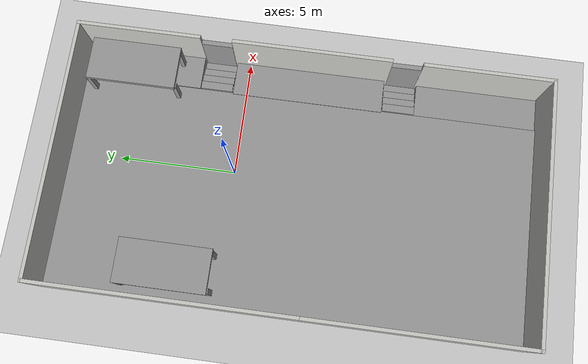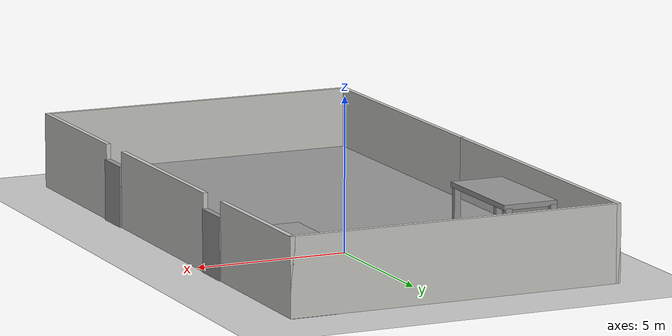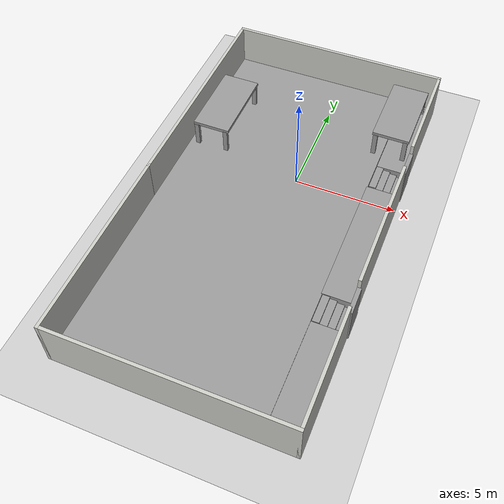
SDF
<sdf version="1.7">
 <world name="default">
  <light name="sun" type="directional">
   <pose>0 0 10 0 -0 0</pose>
   <diffuse>0.8 0.8 0.8 1</diffuse>
   <specular>0.2 0.2 0.2 1</specular>
   <attenuation>
    <range>1000</range>
    <constant>0.9</constant>
    <linear>0.01</linear>
    <quadratic>0.001</quadratic>
   </attenuation>
   <direction>-0.5 0.1 -0.9</direction>
   <spot><inner_angle>0</inner_angle><outer_angle>0</outer_angle><falloff>0</falloff></spot>
  </light>
  <model name="ground_plane">
   <static>1</static>
   <link name="link">
    <collision name="collision">
     <geometry><plane><normal>0 0 1</normal><size>100 100</size></plane></geometry>
     <surface>
      <contact><collide_bitmask>65535</collide_bitmask></contact>
      <friction><ode><mu>100</mu><mu2>50</mu2></ode></friction>
     </surface>
    </collision>
    <visual name="visual">
     <cast_shadows>0</cast_shadows>
     <geometry><plane><normal>0 0 1</normal><size>100 100</size></plane></geometry>
     <material>
      <script><uri>file://media/materials/scripts/gazebo.material</uri><name>Gazebo/Grey</name></script>
     </material>
    </visual>
   </link>
  </model>
  <gravity>0 0 -9.8</gravity>
  <magnetic_field>6e-06 2.3e-05 -4.2e-05</magnetic_field>
  <atmosphere type="adiabatic"/>
  <physics type="ode">
   <max_step_size>0.001</max_step_size>
   <real_time_factor>1</real_time_factor>
   <real_time_update_rate>1000</real_time_update_rate>
  </physics>
  <scene><ambient>0.4 0.4 0.4 1</ambient><background>0.7 0.7 0.7 1</background><shadows>1</shadows></scene>
  <spherical_coordinates>
   <surface_model>EARTH_WGS84</surface_model>
   <latitude_deg>0</latitude_deg>
   <longitude_deg>0</longitude_deg>
   <elevation>0</elevation>
   <heading_deg>0</heading_deg>
  </spherical_coordinates>
  <model name="uni_lab_with_floorjoint">
   <model name="uni_lab_with_floor">
    <link name="link_0">
     <inertial>
      <mass>76.9731</mass>
      <inertia><ixx>2549.54</ixx><ixy>0</ixy><ixz>0</ixz><iyy>549.418</iyy><iyz>0</iyz><izz>3096.72</izz></inertia>
     </inertial>
     <pose>-3.34953 -0.011442 0.067888 0 -0 0</pose>
     <visual name="visual">
      <geometry><box><size>9.2455 19.9323 0.41747</size></box></geometry>
      <material>
       <lighting>1</lighting>
       <script><uri>file://media/materials/scripts/gazebo.material</uri><name>Gazebo/Grey</name></script>
       <shader type="pixel"/>
       <emissive>0 0 0 1</emissive>
      </material>
     </visual>
     <collision name="collision">
      <geometry><box><size>9.2455 19.9323 0.41747</size></box></geometry>
      <surface>
       <friction>
        <ode><mu>1</mu><mu2>1</mu2><fdir1>0 0 0</fdir1><slip1>0</slip1><slip2>0</slip2></ode>
        <torsional>
         <coefficient>1</coefficient>
         <patch_radius>0</patch_radius>
         <surface_radius>0</surface_radius>
         <use_patch_radius>1</use_patch_radius>
         <ode><slip>0</slip></ode>
        </torsional>
       </friction>
       <bounce><restitution_coefficient>0</restitution_coefficient><threshold>1e+06</threshold></bounce>
       <contact>
        <collide_without_contact>0</collide_without_contact>
        <collide_without_contact_bitmask>1</collide_without_contact_bitmask>
        <collide_bitmask>1</collide_bitmask>
        <ode>
         <soft_cfm>0</soft_cfm>
         <soft_erp>0.2</soft_erp>
         <kp>1e+13</kp>
         <kd>1</kd>
         <max_vel>0.01</max_vel>
         <min_depth>0</min_depth>
        </ode>
        <bullet>
         <split_impulse>1</split_impulse>
         <split_impulse_penetration_threshold>-0.01</split_impulse_penetration_threshold>
         <soft_cfm>0</soft_cfm>
         <soft_erp>0.2</soft_erp>
         <kp>1e+13</kp>
         <kd>1</kd>
        </bullet>
       </contact>
      </surface>
     </collision>
    </link>
    <link name="link_1">
     <inertial>
      <mass>4.46066</mass>
      <inertia><ixx>15.9954</ixx><ixy>0</ixy><ixz>0</ixz><iyy>0.881403</iyy><iyz>0</iyz><izz>16.7164</izz></inertia>
     </inertial>
     <pose>1.95775 0.035183 0.061316 0 -0 0</pose>
     <visual name="visual">
      <geometry><box><size>1.46816 6.5433 0.464388</size></box></geometry>
      <material>
       <lighting>1</lighting>
       <script><uri>file://media/materials/scripts/gazebo.material</uri><name>Gazebo/Grey</name></script>
       <shader type="pixel"/>
       <emissive>0 0 0 1</emissive>
      </material>
     </visual>
     <collision name="collision">
      <geometry><box><size>1.46816 6.5433 0.464388</size></box></geometry>
      <surface>
       <friction>
        <ode><mu>1</mu><mu2>1</mu2><fdir1>0 0 0</fdir1><slip1>0</slip1><slip2>0</slip2></ode>
        <torsional>
         <coefficient>1</coefficient>
         <patch_radius>0</patch_radius>
         <surface_radius>0</surface_radius>
         <use_patch_radius>1</use_patch_radius>
         <ode><slip>0</slip></ode>
        </torsional>
       </friction>
       <bounce><restitution_coefficient>0</restitution_coefficient><threshold>1e+06</threshold></bounce>
       <contact>
        <collide_without_contact>0</collide_without_contact>
        <collide_without_contact_bitmask>1</collide_without_contact_bitmask>
        <collide_bitmask>1</collide_bitmask>
        <ode>
         <soft_cfm>0</soft_cfm>
         <soft_erp>0.2</soft_erp>
         <kp>1e+13</kp>
         <kd>1</kd>
         <max_vel>0.01</max_vel>
         <min_depth>0</min_depth>
        </ode>
        <bullet>
         <split_impulse>1</split_impulse>
         <split_impulse_penetration_threshold>-0.01</split_impulse_penetration_threshold>
         <soft_cfm>0</soft_cfm>
         <soft_erp>0.2</soft_erp>
         <kp>1e+13</kp>
         <kd>1</kd>
        </bullet>
       </contact>
      </surface>
     </collision>
    </link>
    <link name="link_2">
     <inertial>
      <mass>3.90533</mass>
      <inertia><ixx>8.7364</ixx><ixy>0</ixy><ixz>0</ixz><iyy>0.828184</iyy><iyz>0</iyz><izz>9.40191</izz></inertia>
     </inertial>
     <pose>2.05163 7.35125 0.029583 0 -0 0</pose>
     <visual name="visual">
      <geometry><box><size>1.51487 5.15699 0.499937</size></box></geometry>
      <material>
       <lighting>1</lighting>
       <script><uri>file://media/materials/scripts/gazebo.material</uri><name>Gazebo/Grey</name></script>
       <shader type="pixel"/>
      </material>
     </visual>
     <collision name="collision">
      <geometry><box><size>1.51487 5.15699 0.499937</size></box></geometry>
      <surface>
       <friction>
        <ode><mu>1</mu><mu2>1</mu2><fdir1>0 0 0</fdir1><slip1>0</slip1><slip2>0</slip2></ode>
        <torsional>
         <coefficient>1</coefficient>
         <patch_radius>0</patch_radius>
         <surface_radius>0</surface_radius>
         <use_patch_radius>1</use_patch_radius>
         <ode><slip>0</slip></ode>
        </torsional>
       </friction>
       <bounce><restitution_coefficient>0</restitution_coefficient><threshold>1e+06</threshold></bounce>
       <contact>
        <collide_without_contact>0</collide_without_contact>
        <collide_without_contact_bitmask>1</collide_without_contact_bitmask>
        <collide_bitmask>1</collide_bitmask>
        <ode>
         <soft_cfm>0</soft_cfm>
         <soft_erp>0.2</soft_erp>
         <kp>1e+13</kp>
         <kd>1</kd>
         <max_vel>0.01</max_vel>
         <min_depth>0</min_depth>
        </ode>
        <bullet>
         <split_impulse>1</split_impulse>
         <split_impulse_penetration_threshold>-0.01</split_impulse_penetration_threshold>
         <soft_cfm>0</soft_cfm>
         <soft_erp>0.2</soft_erp>
         <kp>1e+13</kp>
         <kd>1</kd>
        </bullet>
       </contact>
      </surface>
     </collision>
    </link>
    <link name="link_3">
     <inertial>
      <mass>3.1541</mass>
      <inertia><ixx>7.36274</ixx><ixy>0</ixy><ixz>0</ixz><iyy>0.566125</iyy><iyz>0</iyz><izz>7.83361</izz></inertia>
     </inertial>
     <pose>1.96654 -7.30469 0.040577 0 -0 0</pose>
     <visual name="visual">
      <geometry><box><size>1.40452 5.2755 0.425672</size></box></geometry>
      <material>
       <lighting>1</lighting>
       <script><uri>file://media/materials/scripts/gazebo.material</uri><name>Gazebo/Grey</name></script>
       <shader type="pixel"/>
      </material>
     </visual>
     <collision name="collision">
      <geometry><box><size>1.40452 5.2755 0.425672</size></box></geometry>
      <surface>
       <friction>
        <ode><mu>1</mu><mu2>1</mu2><fdir1>0 0 0</fdir1><slip1>0</slip1><slip2>0</slip2></ode>
        <torsional>
         <coefficient>1</coefficient>
         <patch_radius>0</patch_radius>
         <surface_radius>0</surface_radius>
         <use_patch_radius>1</use_patch_radius>
         <ode><slip>0</slip></ode>
        </torsional>
       </friction>
       <bounce><restitution_coefficient>0</restitution_coefficient><threshold>1e+06</threshold></bounce>
       <contact>
        <collide_without_contact>0</collide_without_contact>
        <collide_without_contact_bitmask>1</collide_without_contact_bitmask>
        <collide_bitmask>1</collide_bitmask>
        <ode>
         <soft_cfm>0</soft_cfm>
         <soft_erp>0.2</soft_erp>
         <kp>1e+13</kp>
         <kd>1</kd>
         <max_vel>0.01</max_vel>
         <min_depth>0</min_depth>
        </ode>
        <bullet>
         <split_impulse>1</split_impulse>
         <split_impulse_penetration_threshold>-0.01</split_impulse_penetration_threshold>
         <soft_cfm>0</soft_cfm>
         <soft_erp>0.2</soft_erp>
         <kp>1e+13</kp>
         <kd>1</kd>
        </bullet>
       </contact>
      </surface>
     </collision>
    </link>
    <model name="uni_lab">
     <pose>-2.6264 -0.070305 -0.199364 0 -0 0</pose>
     <link name="Door_0">
      <collision name="Door_0_Collision">
       <geometry><box><size>1.27502 0.2 2</size></box></geometry>
       <pose>0 0 1 0 -0 0</pose>
      </collision>
      <visual name="Door_0_Visual">
       <pose>0 0 1 0 -0 0</pose>
       <geometry><box><size>1.27502 0.2 2</size></box></geometry>
       <material>
        <script><uri>file://media/materials/scripts/gazebo.material</uri><name>Gazebo/Grey</name></script>
       </material>
      </visual>
      <pose>5.45453 -3.91442 0 0 -0 1.57588</pose>
     </link>
     <link name="Door_1">
      <collision name="Door_1_Collision">
       <geometry><box><size>1.32225 0.2 2</size></box></geometry>
       <pose>0 0 1 0 -0 0</pose>
      </collision>
      <visual name="Door_1_Visual">
       <pose>0 0 1 0 -0 0</pose>
       <geometry><box><size>1.32225 0.2 2</size></box></geometry>
       <material>
        <script><uri>file://media/materials/scripts/gazebo.material</uri><name>Gazebo/Grey</name></script>
       </material>
      </visual>
      <pose>5.43535 4.13457 0 0 -0 1.57249</pose>
     </link>
     <link name="Stairs_5">
      <visual name="Stairs_5_Visual_0">
       <pose>5.13269 4.12145 0.0625 0 -0 -1.5708</pose>
       <geometry><box><size>1.39 0.3425 0.125</size></box></geometry>
       <material>
        <script><uri>file://media/materials/scripts/gazebo.material</uri><name>Gazebo/Grey</name></script>
        <ambient>1 1 1 1</ambient>
       </material>
       <meta><layer>0</layer></meta>
      </visual>
      <collision name="Stairs_5_Collision_0">
       <geometry><box><size>1.39 0.3425 0.125</size></box></geometry>
       <pose>5.13269 4.12145 0.0625 0 -0 -1.5708</pose>
      </collision>
      <visual name="Stairs_5_Visual_1">
       <pose>4.79019 4.12145 0.1875 0 -0 -1.5708</pose>
       <geometry><box><size>1.39 0.3425 0.125</size></box></geometry>
       <material>
        <script><uri>file://media/materials/scripts/gazebo.material</uri><name>Gazebo/Grey</name></script>
        <ambient>1 1 1 1</ambient>
       </material>
       <meta><layer>0</layer></meta>
      </visual>
      <collision name="Stairs_5_Collision_1">
       <geometry><box><size>1.39 0.3425 0.125</size></box></geometry>
       <pose>4.79019 4.12145 0.1875 0 -0 -1.5708</pose>
      </collision>
      <visual name="Stairs_5_Visual_2">
       <pose>4.44769 4.12145 0.3125 0 -0 -1.5708</pose>
       <geometry><box><size>1.39 0.3425 0.125</size></box></geometry>
       <material>
        <script><uri>file://media/materials/scripts/gazebo.material</uri><name>Gazebo/Grey</name></script>
        <ambient>1 1 1 1</ambient>
       </material>
       <meta><layer>0</layer></meta>
      </visual>
      <collision name="Stairs_5_Collision_2">
       <geometry><box><size>1.39 0.3425 0.125</size></box></geometry>
       <pose>4.44769 4.12145 0.3125 0 -0 -1.5708</pose>
      </collision>
      <visual name="Stairs_5_Visual_3">
       <pose>4.10519 4.12145 0.4375 0 -0 -1.5708</pose>
       <geometry><box><size>1.39 0.3425 0.125</size></box></geometry>
       <material>
        <script><uri>file://media/materials/scripts/gazebo.material</uri><name>Gazebo/Grey</name></script>
        <ambient>1 1 1 1</ambient>
       </material>
       <meta><layer>0</layer></meta>
      </visual>
      <collision name="Stairs_5_Collision_3">
       <geometry><box><size>1.39 0.3425 0.125</size></box></geometry>
       <pose>4.10519 4.12145 0.4375 0 -0 -1.5708</pose>
      </collision>
     </link>
     <link name="Stairs_6">
      <visual name="Stairs_6_Visual_0">
       <pose>5.12481 -3.89959 0.0625 0 0 -1.5708</pose>
       <geometry><box><size>1.39 0.3425 0.125</size></box></geometry>
       <material>
        <script><uri>file://media/materials/scripts/gazebo.material</uri><name>Gazebo/Grey</name></script>
        <ambient>1 1 1 1</ambient>
       </material>
       <meta><layer>0</layer></meta>
      </visual>
      <collision name="Stairs_6_Collision_0">
       <geometry><box><size>1.39 0.3425 0.125</size></box></geometry>
       <pose>5.12481 -3.89959 0.0625 0 0 -1.5708</pose>
      </collision>
      <visual name="Stairs_6_Visual_1">
       <pose>4.78231 -3.89959 0.1875 0 0 -1.5708</pose>
       <geometry><box><size>1.39 0.3425 0.125</size></box></geometry>
       <material>
        <script><uri>file://media/materials/scripts/gazebo.material</uri><name>Gazebo/Grey</name></script>
        <ambient>1 1 1 1</ambient>
       </material>
       <meta><layer>0</layer></meta>
      </visual>
      <collision name="Stairs_6_Collision_1">
       <geometry><box><size>1.39 0.3425 0.125</size></box></geometry>
       <pose>4.78231 -3.89959 0.1875 0 0 -1.5708</pose>
      </collision>
      <visual name="Stairs_6_Visual_2">
       <pose>4.43981 -3.89959 0.3125 0 0 -1.5708</pose>
       <geometry><box><size>1.39 0.3425 0.125</size></box></geometry>
       <material>
        <script><uri>file://media/materials/scripts/gazebo.material</uri><name>Gazebo/Grey</name></script>
        <ambient>1 1 1 1</ambient>
       </material>
       <meta><layer>0</layer></meta>
      </visual>
      <collision name="Stairs_6_Collision_2">
       <geometry><box><size>1.39 0.3425 0.125</size></box></geometry>
       <pose>4.43981 -3.89959 0.3125 0 0 -1.5708</pose>
      </collision>
      <visual name="Stairs_6_Visual_3">
       <pose>4.09731 -3.89959 0.4375 0 0 -1.5708</pose>
       <geometry><box><size>1.39 0.3425 0.125</size></box></geometry>
       <material>
        <script><uri>file://media/materials/scripts/gazebo.material</uri><name>Gazebo/Grey</name></script>
        <ambient>1 1 1 1</ambient>
       </material>
       <meta><layer>0</layer></meta>
      </visual>
      <collision name="Stairs_6_Collision_3">
       <geometry><box><size>1.39 0.3425 0.125</size></box></geometry>
       <pose>4.09731 -3.89959 0.4375 0 0 -1.5708</pose>
      </collision>
     </link>
     <link name="Wall_11">
      <collision name="Wall_11_Collision">
       <geometry><box><size>11 0.15 2.5</size></box></geometry>
       <pose>0 0 1.25 0 -0 0</pose>
      </collision>
      <visual name="Wall_11_Visual">
       <pose>0 0 1.25 0 -0 0</pose>
       <geometry><box><size>11 0.15 2.5</size></box></geometry>
       <material>
        <script><uri>file://media/materials/scripts/gazebo.material</uri><name>Gazebo/CeilingTiled</name></script>
        <ambient>1 1 1 1</ambient>
       </material>
       <meta><layer>0</layer></meta>
      </visual>
      <pose>-9.1e-05 9.975 0 0 -0 0</pose>
     </link>
     <link name="Wall_13">
      <collision name="Wall_13_Collision">
       <geometry><box><size>5.5 0.15 2.5</size></box></geometry>
       <pose>0 0 1.25 0 -0 0</pose>
      </collision>
      <visual name="Wall_13_Visual">
       <pose>0 0 1.25 0 -0 0</pose>
       <geometry><box><size>5.5 0.15 2.5</size></box></geometry>
       <material>
        <script><uri>file://media/materials/scripts/gazebo.material</uri><name>Gazebo/CeilingTiled</name></script>
        <ambient>1 1 1 1</ambient>
       </material>
       <meta><layer>0</layer></meta>
      </visual>
      <pose>5.42491 -7.3 0 0 -0 1.5708</pose>
     </link>
     <link name="Wall_15">
      <collision name="Wall_15_Collision">
       <geometry><box><size>5.25 0.15 2.5</size></box></geometry>
       <pose>0 0 1.25 0 -0 0</pose>
      </collision>
      <visual name="Wall_15_Visual">
       <pose>0 0 1.25 0 -0 0</pose>
       <geometry><box><size>5.25 0.15 2.5</size></box></geometry>
       <material>
        <script><uri>file://media/materials/scripts/gazebo.material</uri><name>Gazebo/CeilingTiled</name></script>
        <ambient>1 1 1 1</ambient>
       </material>
       <meta><layer>0</layer></meta>
      </visual>
      <pose>5.42491 7.425 0 0 -0 -1.5708</pose>
     </link>
     <link name="Wall_23">
      <collision name="Wall_23_Collision">
       <geometry><box><size>6.75 0.15 2.5</size></box></geometry>
       <pose>0 0 1.25 0 -0 0</pose>
      </collision>
      <visual name="Wall_23_Visual">
       <pose>0 0 1.25 0 -0 0</pose>
       <geometry><box><size>6.75 0.15 2.5</size></box></geometry>
       <material>
        <script><uri>file://media/materials/scripts/gazebo.material</uri><name>Gazebo/CeilingTiled</name></script>
        <ambient>1 1 1 1</ambient>
       </material>
       <meta><layer>0</layer></meta>
      </visual>
      <pose>5.42509 0.096254 0 0 -0 -1.5708</pose>
     </link>
     <link name="Wall_5">
      <collision name="Wall_5_Collision">
       <geometry><box><size>9.25 0.15 2.5</size></box></geometry>
       <pose>0 0 1.25 0 -0 0</pose>
      </collision>
      <visual name="Wall_5_Visual">
       <pose>0 0 1.25 0 -0 0</pose>
       <geometry><box><size>9.25 0.15 2.5</size></box></geometry>
       <material>
        <script><uri>file://media/materials/scripts/gazebo.material</uri><name>Gazebo/CeilingTiled</name></script>
        <ambient>1 1 1 1</ambient>
       </material>
       <meta><layer>0</layer></meta>
      </visual>
      <pose>-5.42509 -5.425 0 0 -0 -1.5708</pose>
     </link>
     <link name="Wall_7">
      <collision name="Wall_7_Collision">
       <geometry><box><size>11 0.15 2.5</size></box></geometry>
       <pose>0 0 1.25 0 -0 0</pose>
      </collision>
      <visual name="Wall_7_Visual">
       <pose>0 0 1.25 0 -0 0</pose>
       <geometry><box><size>11 0.15 2.5</size></box></geometry>
       <material>
        <script><uri>file://media/materials/scripts/gazebo.material</uri><name>Gazebo/CeilingTiled</name></script>
        <ambient>1 1 1 1</ambient>
       </material>
       <meta><layer>0</layer></meta>
      </visual>
      <pose>-5.42509 4.55 0 0 -0 1.5708</pose>
     </link>
     <link name="Wall_9">
      <collision name="Wall_9_Collision">
       <geometry><box><size>11 0.15 2.5</size></box></geometry>
       <pose>0 0 1.25 0 -0 0</pose>
      </collision>
      <visual name="Wall_9_Visual">
       <pose>0 0 1.25 0 -0 0</pose>
       <geometry><box><size>11 0.15 2.5</size></box></geometry>
       <material>
        <script><uri>file://media/materials/scripts/gazebo.material</uri><name>Gazebo/CeilingTiled</name></script>
        <ambient>1 1 1 1</ambient>
       </material>
       <meta><layer>0</layer></meta>
      </visual>
      <pose>-9.1e-05 -9.975 0 0 -0 0</pose>
     </link>
     <static>1</static>
    </model>
    <static>0</static>
    <pose>2e-06 -2e-06 0 0 -0 0</pose>
   </model>
   <joint name="link_0_JOINT_0" type="fixed">
    <parent>uni_lab_with_floor::link_0</parent>
    <child>uni_lab_with_floor::link_1</child>
    <physics>
     <ode><limit><cfm>0</cfm><erp>0.2</erp></limit><suspension><cfm>0</cfm><erp>0.2</erp></suspension></ode>
    </physics>
   </joint>
   <joint name="link_0_JOINT_1" type="fixed">
    <parent>uni_lab_with_floor::link_0</parent>
    <child>uni_lab_with_floor::link_2</child>
    <physics>
     <ode><limit><cfm>0</cfm><erp>0.2</erp></limit><suspension><cfm>0</cfm><erp>0.2</erp></suspension></ode>
    </physics>
   </joint>
   <joint name="link_0_JOINT_2" type="fixed">
    <parent>uni_lab_with_floor::link_0</parent>
    <child>uni_lab_with_floor::link_3</child>
    <physics>
     <ode><limit><cfm>0</cfm><erp>0.2</erp></limit><suspension><cfm>0</cfm><erp>0.2</erp></suspension></ode>
    </physics>
   </joint>
   <joint name="link_0_JOINT_3" type="fixed">
    <parent>uni_lab_with_floor::link_0</parent>
    <child>uni_lab_with_floor::uni_lab::Wall_11</child>
    <physics>
     <ode><limit><cfm>0</cfm><erp>0.2</erp></limit><suspension><cfm>0</cfm><erp>0.2</erp></suspension></ode>
    </physics>
   </joint>
   <joint name="link_0_JOINT_4" type="fixed">
    <parent>uni_lab_with_floor::link_0</parent>
    <child>uni_lab_with_floor::uni_lab::Wall_7</child>
    <physics>
     <ode><limit><cfm>0</cfm><erp>0.2</erp></limit><suspension><cfm>0</cfm><erp>0.2</erp></suspension></ode>
    </physics>
   </joint>
   <joint name="link_0_JOINT_5" type="fixed">
    <parent>uni_lab_with_floor::link_0</parent>
    <child>uni_lab_with_floor::uni_lab::Wall_5</child>
    <physics>
     <ode><limit><cfm>0</cfm><erp>0.2</erp></limit><suspension><cfm>0</cfm><erp>0.2</erp></suspension></ode>
    </physics>
   </joint>
   <joint name="link_1_JOINT_6" type="fixed">
    <parent>uni_lab_with_floor::link_1</parent>
    <child>uni_lab_with_floor::uni_lab::Wall_23</child>
    <physics>
     <ode><limit><cfm>0</cfm><erp>0.2</erp></limit><suspension><cfm>0</cfm><erp>0.2</erp></suspension></ode>
    </physics>
   </joint>
   <joint name="link_2_JOINT_8" type="fixed">
    <parent>uni_lab_with_floor::link_2</parent>
    <child>uni_lab_with_floor::uni_lab::Wall_15</child>
    <physics>
     <ode><limit><cfm>0</cfm><erp>0.2</erp></limit><suspension><cfm>0</cfm><erp>0.2</erp></suspension></ode>
    </physics>
   </joint>
   <joint name="link_3_JOINT_7" type="fixed">
    <parent>uni_lab_with_floor::link_3</parent>
    <child>uni_lab_with_floor::uni_lab::Wall_13</child>
    <physics>
     <ode><limit><cfm>0</cfm><erp>0.2</erp></limit><suspension><cfm>0</cfm><erp>0.2</erp></suspension></ode>
    </physics>
   </joint>
   <static>0</static>
   <pose>2.19803 -2.75001 0.218419 0 -0 0</pose>
  </model>
  <model name="table">
   <link name="link_1">
    <inertial>
     <mass>1.15367</mass>
     <inertia><ixx>1.37334</ixx><ixy>0</ixy><ixz>0</ixz><iyy>0.323959</iyy><iyz>0</iyz><izz>1.69193</izz></inertia>
    </inertial>
    <pose>0.010243 0.010053 0.528334 0 -0 0</pose>
    <visual name="visual">
     <geometry><box><size>1.82805 3.77583 0.167115</size></box></geometry>
     <material>
      <lighting>1</lighting>
      <script><uri>file://media/materials/scripts/gazebo.material</uri><name>Gazebo/Grey</name></script>
      <shader type="pixel"/>
      <emissive>0 0 0 1</emissive>
     </material>
    </visual>
    <collision name="collision">
     <geometry><box><size>1.82805 3.77583 0.167115</size></box></geometry>
     <surface>
      <friction>
       <ode><mu>1</mu><mu2>1</mu2><fdir1>0 0 0</fdir1><slip1>0</slip1><slip2>0</slip2></ode>
       <torsional>
        <coefficient>1</coefficient>
        <patch_radius>0</patch_radius>
        <surface_radius>0</surface_radius>
        <use_patch_radius>1</use_patch_radius>
        <ode><slip>0</slip></ode>
       </torsional>
      </friction>
      <bounce><restitution_coefficient>0</restitution_coefficient><threshold>1e+06</threshold></bounce>
      <contact>
       <collide_without_contact>0</collide_without_contact>
       <collide_without_contact_bitmask>1</collide_without_contact_bitmask>
       <collide_bitmask>1</collide_bitmask>
       <ode>
        <soft_cfm>0</soft_cfm>
        <soft_erp>0.2</soft_erp>
        <kp>1e+13</kp>
        <kd>1</kd>
        <max_vel>0.01</max_vel>
        <min_depth>0</min_depth>
       </ode>
       <bullet>
        <split_impulse>1</split_impulse>
        <split_impulse_penetration_threshold>-0.01</split_impulse_penetration_threshold>
        <soft_cfm>0</soft_cfm>
        <soft_erp>0.2</soft_erp>
        <kp>1e+13</kp>
        <kd>1</kd>
       </bullet>
      </contact>
     </surface>
    </collision>
   </link>
   <link name="link_2">
    <inertial>
     <mass>0.0472353</mass>
     <inertia>
      <ixx>0.00620682</ixx>
      <ixy>0</ixy>
      <ixz>0</ixz>
      <iyy>0.00629048</iyy>
      <iyz>0</iyz>
      <izz>0.000310265</izz>
     </inertia>
    </inertial>
    <pose>0.74996 -1.80524 -0.132083 0 -0 0</pose>
    <visual name="visual">
     <geometry><box><size>0.22369 0.169661 1.2442</size></box></geometry>
     <material>
      <lighting>1</lighting>
      <script><uri>file://media/materials/scripts/gazebo.material</uri><name>Gazebo/Grey</name></script>
      <shader type="pixel"/>
      <emissive>0 0 0 1</emissive>
     </material>
    </visual>
    <collision name="collision">
     <geometry><box><size>0.22369 0.169661 1.2442</size></box></geometry>
     <surface>
      <friction>
       <ode><mu>1</mu><mu2>1</mu2><fdir1>0 0 0</fdir1><slip1>0</slip1><slip2>0</slip2></ode>
       <torsional>
        <coefficient>1</coefficient>
        <patch_radius>0</patch_radius>
        <surface_radius>0</surface_radius>
        <use_patch_radius>1</use_patch_radius>
        <ode><slip>0</slip></ode>
       </torsional>
      </friction>
      <bounce><restitution_coefficient>0</restitution_coefficient><threshold>1e+06</threshold></bounce>
      <contact>
       <collide_without_contact>0</collide_without_contact>
       <collide_without_contact_bitmask>1</collide_without_contact_bitmask>
       <collide_bitmask>1</collide_bitmask>
       <ode>
        <soft_cfm>0</soft_cfm>
        <soft_erp>0.2</soft_erp>
        <kp>1e+13</kp>
        <kd>1</kd>
        <max_vel>0.01</max_vel>
        <min_depth>0</min_depth>
       </ode>
       <bullet>
        <split_impulse>1</split_impulse>
        <split_impulse_penetration_threshold>-0.01</split_impulse_penetration_threshold>
        <soft_cfm>0</soft_cfm>
        <soft_erp>0.2</soft_erp>
        <kp>1e+13</kp>
        <kd>1</kd>
       </bullet>
      </contact>
     </surface>
    </collision>
   </link>
   <link name="link_2_clone">
    <inertial>
     <mass>0.0472353</mass>
     <inertia>
      <ixx>0.00620682</ixx>
      <ixy>0</ixy>
      <ixz>0</ixz>
      <iyy>0.00629048</iyy>
      <iyz>0</iyz>
      <izz>0.000310265</izz>
     </inertia>
    </inertial>
    <pose>0.766833 1.81686 -0.132083 0 -0 0</pose>
    <visual name="visual">
     <geometry><box><size>0.22369 0.169661 1.2442</size></box></geometry>
     <material>
      <lighting>1</lighting>
      <script><uri>file://media/materials/scripts/gazebo.material</uri><name>Gazebo/Grey</name></script>
      <shader type="pixel"/>
      <emissive>0 0 0 1</emissive>
     </material>
    </visual>
    <collision name="collision">
     <geometry><box><size>0.22369 0.169661 1.2442</size></box></geometry>
     <surface>
      <friction>
       <ode><mu>1</mu><mu2>1</mu2><fdir1>0 0 0</fdir1><slip1>0</slip1><slip2>0</slip2></ode>
       <torsional>
        <coefficient>1</coefficient>
        <patch_radius>0</patch_radius>
        <surface_radius>0</surface_radius>
        <use_patch_radius>1</use_patch_radius>
        <ode><slip>0</slip></ode>
       </torsional>
      </friction>
      <bounce><restitution_coefficient>0</restitution_coefficient><threshold>1e+06</threshold></bounce>
      <contact>
       <collide_without_contact>0</collide_without_contact>
       <collide_without_contact_bitmask>1</collide_without_contact_bitmask>
       <collide_bitmask>1</collide_bitmask>
       <ode>
        <soft_cfm>0</soft_cfm>
        <soft_erp>0.2</soft_erp>
        <kp>1e+13</kp>
        <kd>1</kd>
        <max_vel>0.01</max_vel>
        <min_depth>0</min_depth>
       </ode>
       <bullet>
        <split_impulse>1</split_impulse>
        <split_impulse_penetration_threshold>-0.01</split_impulse_penetration_threshold>
        <soft_cfm>0</soft_cfm>
        <soft_erp>0.2</soft_erp>
        <kp>1e+13</kp>
        <kd>1</kd>
       </bullet>
      </contact>
     </surface>
    </collision>
   </link>
   <link name="link_2_clone_0">
    <inertial>
     <mass>0.0472353</mass>
     <inertia>
      <ixx>0.00620682</ixx>
      <ixy>0</ixy>
      <ixz>0</ixz>
      <iyy>0.00629048</iyy>
      <iyz>0</iyz>
      <izz>0.000310265</izz>
     </inertia>
    </inertial>
    <pose>-0.737978 -1.84541 -0.132083 0 -0 0</pose>
    <visual name="visual">
     <geometry><box><size>0.22369 0.169661 1.2442</size></box></geometry>
     <material>
      <lighting>1</lighting>
      <script><uri>file://media/materials/scripts/gazebo.material</uri><name>Gazebo/Grey</name></script>
      <shader type="pixel"/>
      <emissive>0 0 0 1</emissive>
     </material>
    </visual>
    <collision name="collision">
     <geometry><box><size>0.22369 0.169661 1.2442</size></box></geometry>
     <surface>
      <friction>
       <ode><mu>1</mu><mu2>1</mu2><fdir1>0 0 0</fdir1><slip1>0</slip1><slip2>0</slip2></ode>
       <torsional>
        <coefficient>1</coefficient>
        <patch_radius>0</patch_radius>
        <surface_radius>0</surface_radius>
        <use_patch_radius>1</use_patch_radius>
        <ode><slip>0</slip></ode>
       </torsional>
      </friction>
      <bounce><restitution_coefficient>0</restitution_coefficient><threshold>1e+06</threshold></bounce>
      <contact>
       <collide_without_contact>0</collide_without_contact>
       <collide_without_contact_bitmask>1</collide_without_contact_bitmask>
       <collide_bitmask>1</collide_bitmask>
       <ode>
        <soft_cfm>0</soft_cfm>
        <soft_erp>0.2</soft_erp>
        <kp>1e+13</kp>
        <kd>1</kd>
        <max_vel>0.01</max_vel>
        <min_depth>0</min_depth>
       </ode>
       <bullet>
        <split_impulse>1</split_impulse>
        <split_impulse_penetration_threshold>-0.01</split_impulse_penetration_threshold>
        <soft_cfm>0</soft_cfm>
        <soft_erp>0.2</soft_erp>
        <kp>1e+13</kp>
        <kd>1</kd>
       </bullet>
      </contact>
     </surface>
    </collision>
   </link>
   <link name="link_2_clone_1">
    <inertial>
     <mass>0.0472353</mass>
     <inertia>
      <ixx>0.00620682</ixx>
      <ixy>0</ixy>
      <ixz>0</ixz>
      <iyy>0.00629048</iyy>
      <iyz>0</iyz>
      <izz>0.000310265</izz>
     </inertia>
    </inertial>
    <pose>-0.789062 1.82375 -0.132083 0 -0 0</pose>
    <visual name="visual">
     <geometry><box><size>0.22369 0.169661 1.2442</size></box></geometry>
     <material>
      <lighting>1</lighting>
      <script><uri>file://media/materials/scripts/gazebo.material</uri><name>Gazebo/Grey</name></script>
      <shader type="pixel"/>
      <emissive>0 0 0 1</emissive>
     </material>
    </visual>
    <collision name="collision">
     <geometry><box><size>0.22369 0.169661 1.2442</size></box></geometry>
     <surface>
      <friction>
       <ode><mu>1</mu><mu2>1</mu2><fdir1>0 0 0</fdir1><slip1>0</slip1><slip2>0</slip2></ode>
       <torsional>
        <coefficient>1</coefficient>
        <patch_radius>0</patch_radius>
        <surface_radius>0</surface_radius>
        <use_patch_radius>1</use_patch_radius>
        <ode><slip>0</slip></ode>
       </torsional>
      </friction>
      <bounce><restitution_coefficient>0</restitution_coefficient><threshold>1e+06</threshold></bounce>
      <contact>
       <collide_without_contact>0</collide_without_contact>
       <collide_without_contact_bitmask>1</collide_without_contact_bitmask>
       <collide_bitmask>1</collide_bitmask>
       <ode>
        <soft_cfm>0</soft_cfm>
        <soft_erp>0.2</soft_erp>
        <kp>1e+13</kp>
        <kd>1</kd>
        <max_vel>0.01</max_vel>
        <min_depth>0</min_depth>
       </ode>
       <bullet>
        <split_impulse>1</split_impulse>
        <split_impulse_penetration_threshold>-0.01</split_impulse_penetration_threshold>
        <soft_cfm>0</soft_cfm>
        <soft_erp>0.2</soft_erp>
        <kp>1e+13</kp>
        <kd>1</kd>
       </bullet>
      </contact>
     </surface>
    </collision>
   </link>
   <joint name="link_1_JOINT_0" type="fixed">
    <parent>link_1</parent>
    <child>link_2</child>
    <physics>
     <ode><limit><cfm>0</cfm><erp>0.2</erp></limit><suspension><cfm>0</cfm><erp>0.2</erp></suspension></ode>
    </physics>
   </joint>
   <joint name="link_1_JOINT_1" type="fixed">
    <parent>link_1</parent>
    <child>link_2_clone_0</child>
    <physics>
     <ode><limit><cfm>0</cfm><erp>0.2</erp></limit><suspension><cfm>0</cfm><erp>0.2</erp></suspension></ode>
    </physics>
   </joint>
   <joint name="link_1_JOINT_2" type="fixed">
    <parent>link_1</parent>
    <child>link_2_clone</child>
    <physics>
     <ode><limit><cfm>0</cfm><erp>0.2</erp></limit><suspension><cfm>0</cfm><erp>0.2</erp></suspension></ode>
    </physics>
   </joint>
   <joint name="link_1_JOINT_3" type="fixed">
    <parent>link_1</parent>
    <child>link_2_clone_1</child>
    <physics>
     <ode><limit><cfm>0</cfm><erp>0.2</erp></limit><suspension><cfm>0</cfm><erp>0.2</erp></suspension></ode>
    </physics>
   </joint>
   <static>0</static>
   <pose>3.76423 4.73289 1.23838 0 -0 0</pose>
  </model>
  <model name="table_0">
   <link name="link_1">
    <inertial>
     <mass>1.15367</mass>
     <inertia><ixx>1.37334</ixx><ixy>0</ixy><ixz>0</ixz><iyy>0.323959</iyy><iyz>0</iyz><izz>1.69193</izz></inertia>
    </inertial>
    <pose>0.010243 0.010053 0.528334 0 -0 0</pose>
    <visual name="visual">
     <geometry><box><size>1.82805 3.77583 0.167115</size></box></geometry>
     <material>
      <lighting>1</lighting>
      <script><uri>file://media/materials/scripts/gazebo.material</uri><name>Gazebo/Grey</name></script>
      <shader type="pixel"/>
      <emissive>0 0 0 1</emissive>
     </material>
    </visual>
    <collision name="collision">
     <geometry><box><size>1.82805 3.77583 0.167115</size></box></geometry>
     <surface>
      <friction>
       <ode><mu>1</mu><mu2>1</mu2><fdir1>0 0 0</fdir1><slip1>0</slip1><slip2>0</slip2></ode>
       <torsional>
        <coefficient>1</coefficient>
        <patch_radius>0</patch_radius>
        <surface_radius>0</surface_radius>
        <use_patch_radius>1</use_patch_radius>
        <ode><slip>0</slip></ode>
       </torsional>
      </friction>
      <bounce><restitution_coefficient>0</restitution_coefficient><threshold>1e+06</threshold></bounce>
      <contact>
       <collide_without_contact>0</collide_without_contact>
       <collide_without_contact_bitmask>1</collide_without_contact_bitmask>
       <collide_bitmask>1</collide_bitmask>
       <ode>
        <soft_cfm>0</soft_cfm>
        <soft_erp>0.2</soft_erp>
        <kp>1e+13</kp>
        <kd>1</kd>
        <max_vel>0.01</max_vel>
        <min_depth>0</min_depth>
       </ode>
       <bullet>
        <split_impulse>1</split_impulse>
        <split_impulse_penetration_threshold>-0.01</split_impulse_penetration_threshold>
        <soft_cfm>0</soft_cfm>
        <soft_erp>0.2</soft_erp>
        <kp>1e+13</kp>
        <kd>1</kd>
       </bullet>
      </contact>
     </surface>
    </collision>
   </link>
   <link name="link_2">
    <inertial>
     <mass>0.0472353</mass>
     <inertia>
      <ixx>0.00620682</ixx>
      <ixy>0</ixy>
      <ixz>0</ixz>
      <iyy>0.00629048</iyy>
      <iyz>0</iyz>
      <izz>0.000310265</izz>
     </inertia>
    </inertial>
    <pose>0.74996 -1.80524 -0.132083 0 -0 0</pose>
    <visual name="visual">
     <geometry><box><size>0.22369 0.169661 1.2442</size></box></geometry>
     <material>
      <lighting>1</lighting>
      <script><uri>file://media/materials/scripts/gazebo.material</uri><name>Gazebo/Grey</name></script>
      <shader type="pixel"/>
      <emissive>0 0 0 1</emissive>
     </material>
    </visual>
    <collision name="collision">
     <geometry><box><size>0.22369 0.169661 1.2442</size></box></geometry>
     <surface>
      <friction>
       <ode><mu>1</mu><mu2>1</mu2><fdir1>0 0 0</fdir1><slip1>0</slip1><slip2>0</slip2></ode>
       <torsional>
        <coefficient>1</coefficient>
        <patch_radius>0</patch_radius>
        <surface_radius>0</surface_radius>
        <use_patch_radius>1</use_patch_radius>
        <ode><slip>0</slip></ode>
       </torsional>
      </friction>
      <bounce><restitution_coefficient>0</restitution_coefficient><threshold>1e+06</threshold></bounce>
      <contact>
       <collide_without_contact>0</collide_without_contact>
       <collide_without_contact_bitmask>1</collide_without_contact_bitmask>
       <collide_bitmask>1</collide_bitmask>
       <ode>
        <soft_cfm>0</soft_cfm>
        <soft_erp>0.2</soft_erp>
        <kp>1e+13</kp>
        <kd>1</kd>
        <max_vel>0.01</max_vel>
        <min_depth>0</min_depth>
       </ode>
       <bullet>
        <split_impulse>1</split_impulse>
        <split_impulse_penetration_threshold>-0.01</split_impulse_penetration_threshold>
        <soft_cfm>0</soft_cfm>
        <soft_erp>0.2</soft_erp>
        <kp>1e+13</kp>
        <kd>1</kd>
       </bullet>
      </contact>
     </surface>
    </collision>
   </link>
   <link name="link_2_clone">
    <inertial>
     <mass>0.0472353</mass>
     <inertia>
      <ixx>0.00620682</ixx>
      <ixy>0</ixy>
      <ixz>0</ixz>
      <iyy>0.00629048</iyy>
      <iyz>0</iyz>
      <izz>0.000310265</izz>
     </inertia>
    </inertial>
    <pose>0.766833 1.81686 -0.132083 0 -0 0</pose>
    <visual name="visual">
     <geometry><box><size>0.22369 0.169661 1.2442</size></box></geometry>
     <material>
      <lighting>1</lighting>
      <script><uri>file://media/materials/scripts/gazebo.material</uri><name>Gazebo/Grey</name></script>
      <shader type="pixel"/>
      <emissive>0 0 0 1</emissive>
     </material>
    </visual>
    <collision name="collision">
     <geometry><box><size>0.22369 0.169661 1.2442</size></box></geometry>
     <surface>
      <friction>
       <ode><mu>1</mu><mu2>1</mu2><fdir1>0 0 0</fdir1><slip1>0</slip1><slip2>0</slip2></ode>
       <torsional>
        <coefficient>1</coefficient>
        <patch_radius>0</patch_radius>
        <surface_radius>0</surface_radius>
        <use_patch_radius>1</use_patch_radius>
        <ode><slip>0</slip></ode>
       </torsional>
      </friction>
      <bounce><restitution_coefficient>0</restitution_coefficient><threshold>1e+06</threshold></bounce>
      <contact>
       <collide_without_contact>0</collide_without_contact>
       <collide_without_contact_bitmask>1</collide_without_contact_bitmask>
       <collide_bitmask>1</collide_bitmask>
       <ode>
        <soft_cfm>0</soft_cfm>
        <soft_erp>0.2</soft_erp>
        <kp>1e+13</kp>
        <kd>1</kd>
        <max_vel>0.01</max_vel>
        <min_depth>0</min_depth>
       </ode>
       <bullet>
        <split_impulse>1</split_impulse>
        <split_impulse_penetration_threshold>-0.01</split_impulse_penetration_threshold>
        <soft_cfm>0</soft_cfm>
        <soft_erp>0.2</soft_erp>
        <kp>1e+13</kp>
        <kd>1</kd>
       </bullet>
      </contact>
     </surface>
    </collision>
   </link>
   <link name="link_2_clone_0">
    <inertial>
     <mass>0.0472353</mass>
     <inertia>
      <ixx>0.00620682</ixx>
      <ixy>0</ixy>
      <ixz>0</ixz>
      <iyy>0.00629048</iyy>
      <iyz>0</iyz>
      <izz>0.000310265</izz>
     </inertia>
    </inertial>
    <pose>-0.737978 -1.84541 -0.132083 0 -0 0</pose>
    <visual name="visual">
     <geometry><box><size>0.22369 0.169661 1.2442</size></box></geometry>
     <material>
      <lighting>1</lighting>
      <script><uri>file://media/materials/scripts/gazebo.material</uri><name>Gazebo/Grey</name></script>
      <shader type="pixel"/>
      <emissive>0 0 0 1</emissive>
     </material>
    </visual>
    <collision name="collision">
     <geometry><box><size>0.22369 0.169661 1.2442</size></box></geometry>
     <surface>
      <friction>
       <ode><mu>1</mu><mu2>1</mu2><fdir1>0 0 0</fdir1><slip1>0</slip1><slip2>0</slip2></ode>
       <torsional>
        <coefficient>1</coefficient>
        <patch_radius>0</patch_radius>
        <surface_radius>0</surface_radius>
        <use_patch_radius>1</use_patch_radius>
        <ode><slip>0</slip></ode>
       </torsional>
      </friction>
      <bounce><restitution_coefficient>0</restitution_coefficient><threshold>1e+06</threshold></bounce>
      <contact>
       <collide_without_contact>0</collide_without_contact>
       <collide_without_contact_bitmask>1</collide_without_contact_bitmask>
       <collide_bitmask>1</collide_bitmask>
       <ode>
        <soft_cfm>0</soft_cfm>
        <soft_erp>0.2</soft_erp>
        <kp>1e+13</kp>
        <kd>1</kd>
        <max_vel>0.01</max_vel>
        <min_depth>0</min_depth>
       </ode>
       <bullet>
        <split_impulse>1</split_impulse>
        <split_impulse_penetration_threshold>-0.01</split_impulse_penetration_threshold>
        <soft_cfm>0</soft_cfm>
        <soft_erp>0.2</soft_erp>
        <kp>1e+13</kp>
        <kd>1</kd>
       </bullet>
      </contact>
     </surface>
    </collision>
   </link>
   <link name="link_2_clone_1">
    <inertial>
     <mass>0.0472353</mass>
     <inertia>
      <ixx>0.00620682</ixx>
      <ixy>0</ixy>
      <ixz>0</ixz>
      <iyy>0.00629048</iyy>
      <iyz>0</iyz>
      <izz>0.000310265</izz>
     </inertia>
    </inertial>
    <pose>-0.789062 1.82375 -0.132083 0 -0 0</pose>
    <visual name="visual">
     <geometry><box><size>0.22369 0.169661 1.2442</size></box></geometry>
     <material>
      <lighting>1</lighting>
      <script><uri>file://media/materials/scripts/gazebo.material</uri><name>Gazebo/Grey</name></script>
      <shader type="pixel"/>
      <emissive>0 0 0 1</emissive>
     </material>
    </visual>
    <collision name="collision">
     <geometry><box><size>0.22369 0.169661 1.2442</size></box></geometry>
     <surface>
      <friction>
       <ode><mu>1</mu><mu2>1</mu2><fdir1>0 0 0</fdir1><slip1>0</slip1><slip2>0</slip2></ode>
       <torsional>
        <coefficient>1</coefficient>
        <patch_radius>0</patch_radius>
        <surface_radius>0</surface_radius>
        <use_patch_radius>1</use_patch_radius>
        <ode><slip>0</slip></ode>
       </torsional>
      </friction>
      <bounce><restitution_coefficient>0</restitution_coefficient><threshold>1e+06</threshold></bounce>
      <contact>
       <collide_without_contact>0</collide_without_contact>
       <collide_without_contact_bitmask>1</collide_without_contact_bitmask>
       <collide_bitmask>1</collide_bitmask>
       <ode>
        <soft_cfm>0</soft_cfm>
        <soft_erp>0.2</soft_erp>
        <kp>1e+13</kp>
        <kd>1</kd>
        <max_vel>0.01</max_vel>
        <min_depth>0</min_depth>
       </ode>
       <bullet>
        <split_impulse>1</split_impulse>
        <split_impulse_penetration_threshold>-0.01</split_impulse_penetration_threshold>
        <soft_cfm>0</soft_cfm>
        <soft_erp>0.2</soft_erp>
        <kp>1e+13</kp>
        <kd>1</kd>
       </bullet>
      </contact>
     </surface>
    </collision>
   </link>
   <joint name="link_1_JOINT_0" type="fixed">
    <parent>link_1</parent>
    <child>link_2</child>
    <physics>
     <ode><limit><cfm>0</cfm><erp>0.2</erp></limit><suspension><cfm>0</cfm><erp>0.2</erp></suspension></ode>
    </physics>
   </joint>
   <joint name="link_1_JOINT_1" type="fixed">
    <parent>link_1</parent>
    <child>link_2_clone_0</child>
    <physics>
     <ode><limit><cfm>0</cfm><erp>0.2</erp></limit><suspension><cfm>0</cfm><erp>0.2</erp></suspension></ode>
    </physics>
   </joint>
   <joint name="link_1_JOINT_2" type="fixed">
    <parent>link_1</parent>
    <child>link_2_clone</child>
    <physics>
     <ode><limit><cfm>0</cfm><erp>0.2</erp></limit><suspension><cfm>0</cfm><erp>0.2</erp></suspension></ode>
    </physics>
   </joint>
   <joint name="link_1_JOINT_3" type="fixed">
    <parent>link_1</parent>
    <child>link_2_clone_1</child>
    <physics>
     <ode><limit><cfm>0</cfm><erp>0.2</erp></limit><suspension><cfm>0</cfm><erp>0.2</erp></suspension></ode>
    </physics>
   </joint>
   <static>0</static>
   <pose>-4.5494 1.99321 1.37367 0 -0 0</pose>
  </model>
 </world>
</sdf>
